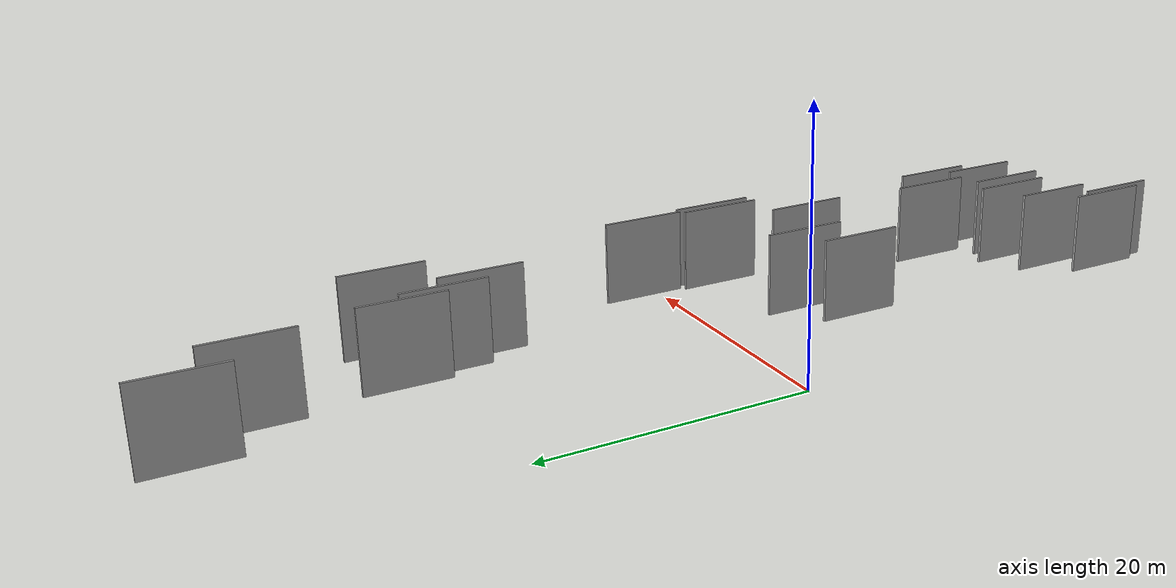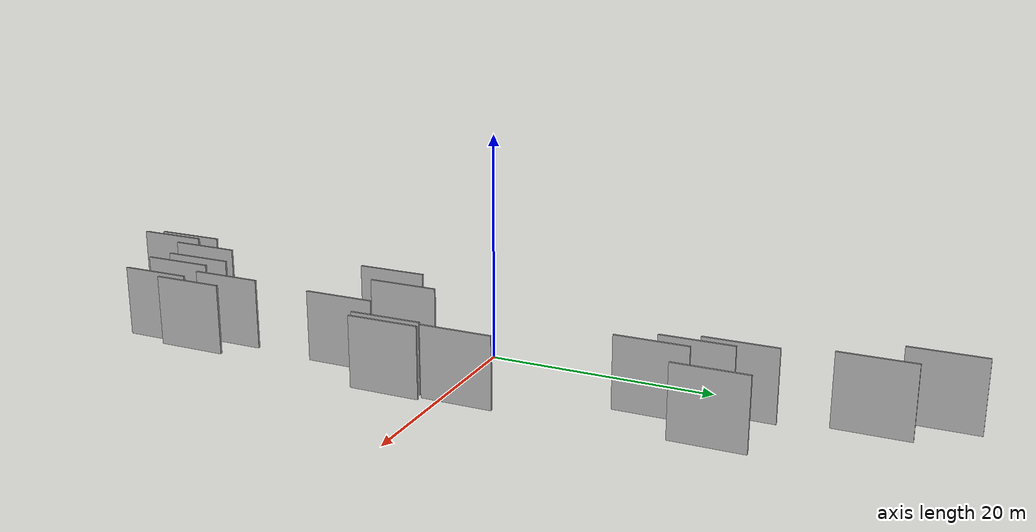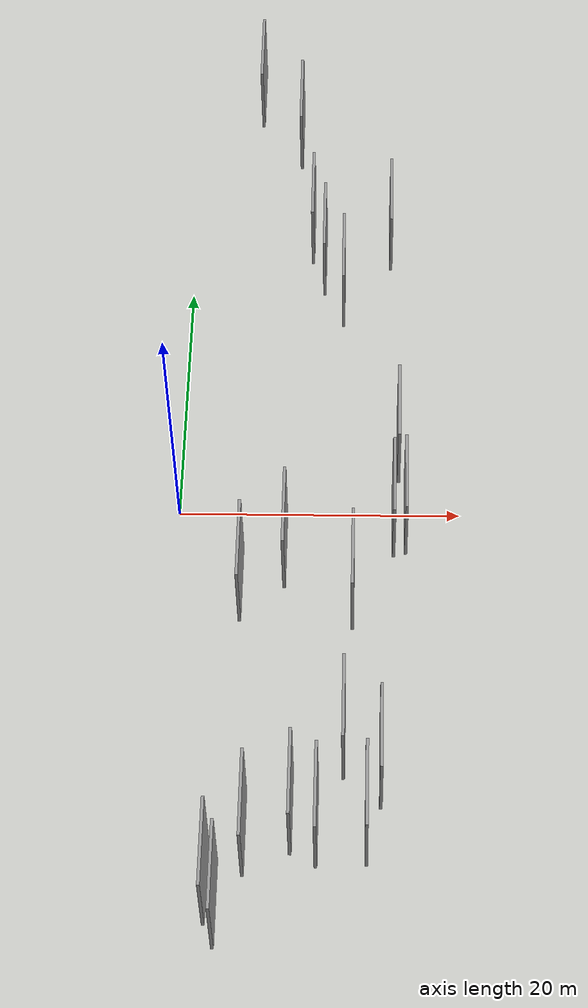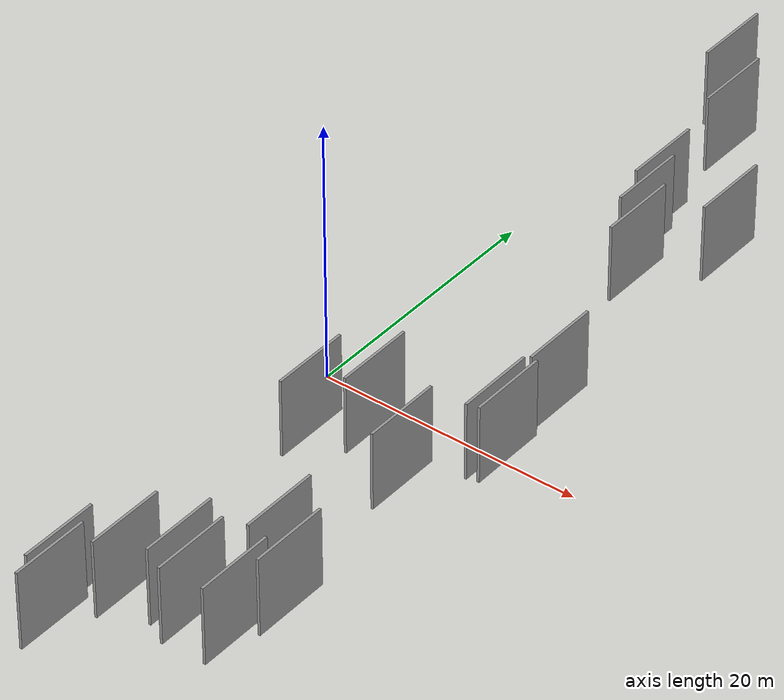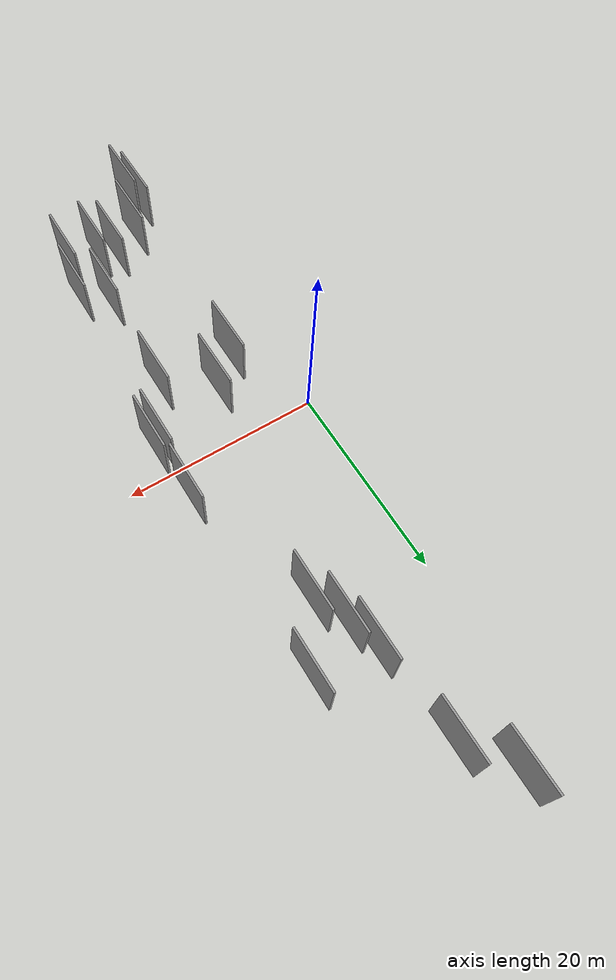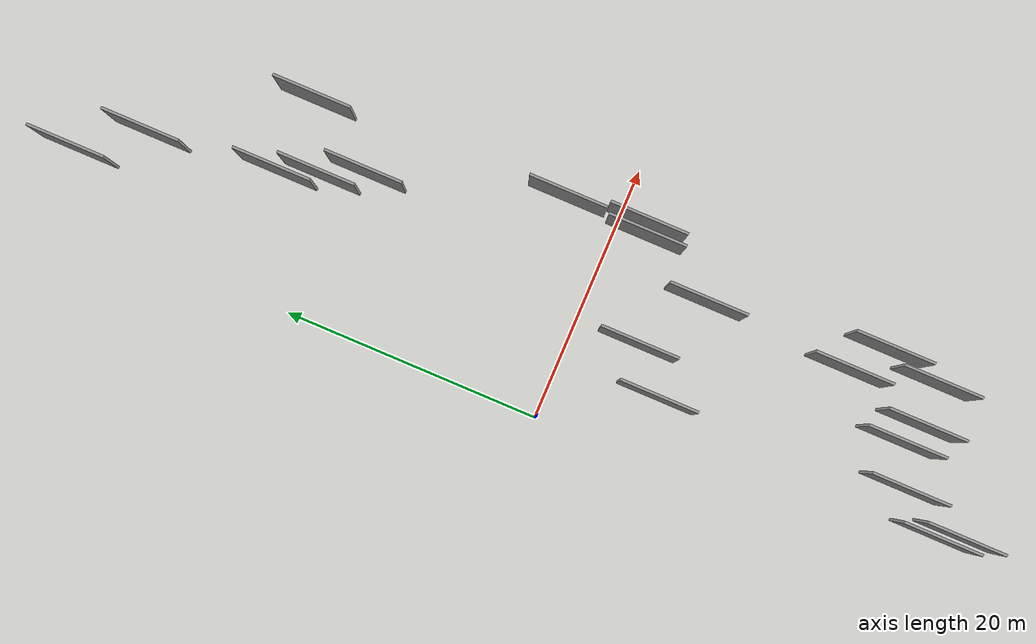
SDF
<sdf version="1.6">
 <world name="default">
  <scene>
   <sky><clouds><speed>12</speed></clouds></sky>
   <ambient>0.4 0.4 0.4 1</ambient>
   <background>0.7 0.7 0.7 1</background>
   <shadows>1</shadows>
  </scene>
  <gravity>0 0 -9.8066</gravity>
  <magnetic_field>6e-06 2.3e-05 -4.2e-05</magnetic_field>
  <physics default="0" name="default_physics" type="ode">
   <ode>
    <solver>
     <type>quick</type>
     <iters>10</iters>
     <sor>1.0</sor>
     <use_dynamic_moi_rescaling>0</use_dynamic_moi_rescaling>
    </solver>
    <constraints>
     <cfm>0</cfm>
     <erp>0.2</erp>
     <contact_max_correcting_vel>100</contact_max_correcting_vel>
     <contact_surface_layer>0.001</contact_surface_layer>
    </constraints>
   </ode>
   <max_step_size>0.004</max_step_size>
   <real_time_factor>1</real_time_factor>
   <real_time_update_rate>250</real_time_update_rate>
  </physics>
  <light name="sun" type="directional">
   <pose>0 0 10 0 0 0</pose>
   <diffuse>0.8 0.8 0.8 1</diffuse>
   <specular>0.2 0.2 0.2 1</specular>
   <attenuation>
    <range>1000</range>
    <constant>0.9</constant>
    <linear>0.01</linear>
    <quadratic>0.001</quadratic>
   </attenuation>
   <direction>-0.5 0.1 -0.9</direction>
  </light>
  <model name="grey_wall_1">
   <static>1</static>
   <pose>10.0781 21.2620 2.5 0.000000 0.000000 1.570796</pose>
   <link name="link">
    <pose>0 0 3.00 0 0 0</pose>
    <collision name="collision"><geometry><box><size>6.00 0.2 6.00</size></box></geometry></collision>
    <visual name="visual">
     <cast_shadows>0</cast_shadows>
     <geometry><box><size>6.00 0.2 6.00</size></box></geometry>
     <material>
      <script>
       <uri>model://grey_wall/materials/scripts</uri>
       <uri>model://grey_wall/materials/textures</uri>
       <name>vrc/grey_wall</name>
      </script>
     </material>
    </visual>
   </link>
  </model>
  <model name="grey_wall_2">
   <static>1</static>
   <pose>8.0754 34.0014 2.5 0.000000 0.000000 1.570796</pose>
   <link name="link">
    <pose>0 0 3.00 0 0 0</pose>
    <collision name="collision"><geometry><box><size>6.00 0.2 6.00</size></box></geometry></collision>
    <visual name="visual">
     <cast_shadows>0</cast_shadows>
     <geometry><box><size>6.00 0.2 6.00</size></box></geometry>
     <material>
      <script>
       <uri>model://grey_wall/materials/scripts</uri>
       <uri>model://grey_wall/materials/textures</uri>
       <name>vrc/grey_wall</name>
      </script>
     </material>
    </visual>
   </link>
  </model>
  <model name="grey_wall_3">
   <static>1</static>
   <pose>15.6154 4.1372 2.5 0.000000 0.000000 1.570796</pose>
   <link name="link">
    <pose>0 0 3.00 0 0 0</pose>
    <collision name="collision"><geometry><box><size>6.00 0.2 6.00</size></box></geometry></collision>
    <visual name="visual">
     <cast_shadows>0</cast_shadows>
     <geometry><box><size>6.00 0.2 6.00</size></box></geometry>
     <material>
      <script>
       <uri>model://grey_wall/materials/scripts</uri>
       <uri>model://grey_wall/materials/textures</uri>
       <name>vrc/grey_wall</name>
      </script>
     </material>
    </visual>
   </link>
  </model>
  <model name="grey_wall_4">
   <static>1</static>
   <pose>10.2944 -25.6780 2.5 0.000000 0.000000 1.570796</pose>
   <link name="link">
    <pose>0 0 3.00 0 0 0</pose>
    <collision name="collision"><geometry><box><size>6.00 0.2 6.00</size></box></geometry></collision>
    <visual name="visual">
     <cast_shadows>0</cast_shadows>
     <geometry><box><size>6.00 0.2 6.00</size></box></geometry>
     <material>
      <script>
       <uri>model://grey_wall/materials/scripts</uri>
       <uri>model://grey_wall/materials/textures</uri>
       <name>vrc/grey_wall</name>
      </script>
     </material>
    </visual>
   </link>
  </model>
  <model name="grey_wall_5">
   <static>1</static>
   <pose>11.5249 18.2368 2.5 0.000000 0.000000 1.570796</pose>
   <link name="link">
    <pose>0 0 3.00 0 0 0</pose>
    <collision name="collision"><geometry><box><size>6.00 0.2 6.00</size></box></geometry></collision>
    <visual name="visual">
     <cast_shadows>0</cast_shadows>
     <geometry><box><size>6.00 0.2 6.00</size></box></geometry>
     <material>
      <script>
       <uri>model://grey_wall/materials/scripts</uri>
       <uri>model://grey_wall/materials/textures</uri>
       <name>vrc/grey_wall</name>
      </script>
     </material>
    </visual>
   </link>
  </model>
  <model name="grey_wall_6">
   <static>1</static>
   <pose>15.2632 -2.1343 2.5 0.000000 0.000000 1.570796</pose>
   <link name="link">
    <pose>0 0 3.00 0 0 0</pose>
    <collision name="collision"><geometry><box><size>6.00 0.2 6.00</size></box></geometry></collision>
    <visual name="visual">
     <cast_shadows>0</cast_shadows>
     <geometry><box><size>6.00 0.2 6.00</size></box></geometry>
     <material>
      <script>
       <uri>model://grey_wall/materials/scripts</uri>
       <uri>model://grey_wall/materials/textures</uri>
       <name>vrc/grey_wall</name>
      </script>
     </material>
    </visual>
   </link>
  </model>
  <model name="grey_wall_7">
   <static>1</static>
   <pose>13.5310 -25.5161 2.5 0.000000 0.000000 1.570796</pose>
   <link name="link">
    <pose>0 0 3.00 0 0 0</pose>
    <collision name="collision"><geometry><box><size>6.00 0.2 6.00</size></box></geometry></collision>
    <visual name="visual">
     <cast_shadows>0</cast_shadows>
     <geometry><box><size>6.00 0.2 6.00</size></box></geometry>
     <material>
      <script>
       <uri>model://grey_wall/materials/scripts</uri>
       <uri>model://grey_wall/materials/textures</uri>
       <name>vrc/grey_wall</name>
      </script>
     </material>
    </visual>
   </link>
  </model>
  <model name="grey_wall_8">
   <static>1</static>
   <pose>3.2987 -29.6583 2.5 0.000000 0.000000 1.570796</pose>
   <link name="link">
    <pose>0 0 3.00 0 0 0</pose>
    <collision name="collision"><geometry><box><size>6.00 0.2 6.00</size></box></geometry></collision>
    <visual name="visual">
     <cast_shadows>0</cast_shadows>
     <geometry><box><size>6.00 0.2 6.00</size></box></geometry>
     <material>
      <script>
       <uri>model://grey_wall/materials/scripts</uri>
       <uri>model://grey_wall/materials/textures</uri>
       <name>vrc/grey_wall</name>
      </script>
     </material>
    </visual>
   </link>
  </model>
  <model name="grey_wall_9">
   <static>1</static>
   <pose>15.0407 23.7367 2.5 0.000000 0.000000 1.570796</pose>
   <link name="link">
    <pose>0 0 3.00 0 0 0</pose>
    <collision name="collision"><geometry><box><size>6.00 0.2 6.00</size></box></geometry></collision>
    <visual name="visual">
     <cast_shadows>0</cast_shadows>
     <geometry><box><size>6.00 0.2 6.00</size></box></geometry>
     <material>
      <script>
       <uri>model://grey_wall/materials/scripts</uri>
       <uri>model://grey_wall/materials/textures</uri>
       <name>vrc/grey_wall</name>
      </script>
     </material>
    </visual>
   </link>
  </model>
  <model name="grey_wall_10">
   <static>1</static>
   <pose>5.6263 -26.3028 2.5 0.000000 0.000000 1.570796</pose>
   <link name="link">
    <pose>0 0 3.00 0 0 0</pose>
    <collision name="collision"><geometry><box><size>6.00 0.2 6.00</size></box></geometry></collision>
    <visual name="visual">
     <cast_shadows>0</cast_shadows>
     <geometry><box><size>6.00 0.2 6.00</size></box></geometry>
     <material>
      <script>
       <uri>model://grey_wall/materials/scripts</uri>
       <uri>model://grey_wall/materials/textures</uri>
       <name>vrc/grey_wall</name>
      </script>
     </material>
    </visual>
   </link>
  </model>
  <model name="grey_wall_11">
   <static>1</static>
   <pose>12.4580 -8.0084 2.5 0.000000 0.000000 1.570796</pose>
   <link name="link">
    <pose>0 0 3.00 0 0 0</pose>
    <collision name="collision"><geometry><box><size>6.00 0.2 6.00</size></box></geometry></collision>
    <visual name="visual">
     <cast_shadows>0</cast_shadows>
     <geometry><box><size>6.00 0.2 6.00</size></box></geometry>
     <material>
      <script>
       <uri>model://grey_wall/materials/scripts</uri>
       <uri>model://grey_wall/materials/textures</uri>
       <name>vrc/grey_wall</name>
      </script>
     </material>
    </visual>
   </link>
  </model>
  <model name="grey_wall_12">
   <static>1</static>
   <pose>16.0974 -1.9012 2.5 0.000000 0.000000 1.570796</pose>
   <link name="link">
    <pose>0 0 3.00 0 0 0</pose>
    <collision name="collision"><geometry><box><size>6.00 0.2 6.00</size></box></geometry></collision>
    <visual name="visual">
     <cast_shadows>0</cast_shadows>
     <geometry><box><size>6.00 0.2 6.00</size></box></geometry>
     <material>
      <script>
       <uri>model://grey_wall/materials/scripts</uri>
       <uri>model://grey_wall/materials/textures</uri>
       <name>vrc/grey_wall</name>
      </script>
     </material>
    </visual>
   </link>
  </model>
  <model name="grey_wall_13">
   <static>1</static>
   <pose>8.6313 -24.7981 2.5 0.000000 0.000000 1.570796</pose>
   <link name="link">
    <pose>0 0 3.00 0 0 0</pose>
    <collision name="collision"><geometry><box><size>6.00 0.2 6.00</size></box></geometry></collision>
    <visual name="visual">
     <cast_shadows>0</cast_shadows>
     <geometry><box><size>6.00 0.2 6.00</size></box></geometry>
     <material>
      <script>
       <uri>model://grey_wall/materials/scripts</uri>
       <uri>model://grey_wall/materials/textures</uri>
       <name>vrc/grey_wall</name>
      </script>
     </material>
    </visual>
   </link>
  </model>
  <model name="grey_wall_14">
   <static>1</static>
   <pose>7.7189 -4.7215 2.5 0.000000 0.000000 1.570796</pose>
   <link name="link">
    <pose>0 0 3.00 0 0 0</pose>
    <collision name="collision"><geometry><box><size>6.00 0.2 6.00</size></box></geometry></collision>
    <visual name="visual">
     <cast_shadows>0</cast_shadows>
     <geometry><box><size>6.00 0.2 6.00</size></box></geometry>
     <material>
      <script>
       <uri>model://grey_wall/materials/scripts</uri>
       <uri>model://grey_wall/materials/textures</uri>
       <name>vrc/grey_wall</name>
      </script>
     </material>
    </visual>
   </link>
  </model>
  <model name="grey_wall_15">
   <static>1</static>
   <pose>4.9318 38.4271 2.5 0.000000 0.000000 1.570796</pose>
   <link name="link">
    <pose>0 0 3.00 0 0 0</pose>
    <collision name="collision"><geometry><box><size>6.00 0.2 6.00</size></box></geometry></collision>
    <visual name="visual">
     <cast_shadows>0</cast_shadows>
     <geometry><box><size>6.00 0.2 6.00</size></box></geometry>
     <material>
      <script>
       <uri>model://grey_wall/materials/scripts</uri>
       <uri>model://grey_wall/materials/textures</uri>
       <name>vrc/grey_wall</name>
      </script>
     </material>
    </visual>
   </link>
  </model>
  <model name="grey_wall_16">
   <static>1</static>
   <pose>9.1551 24.3074 2.5 0.000000 0.000000 1.570796</pose>
   <link name="link">
    <pose>0 0 3.00 0 0 0</pose>
    <collision name="collision"><geometry><box><size>6.00 0.2 6.00</size></box></geometry></collision>
    <visual name="visual">
     <cast_shadows>0</cast_shadows>
     <geometry><box><size>6.00 0.2 6.00</size></box></geometry>
     <material>
      <script>
       <uri>model://grey_wall/materials/scripts</uri>
       <uri>model://grey_wall/materials/textures</uri>
       <name>vrc/grey_wall</name>
      </script>
     </material>
    </visual>
   </link>
  </model>
  <model name="grey_wall_17">
   <static>1</static>
   <pose>14.4473 -21.4778 2.5 0.000000 0.000000 1.570796</pose>
   <link name="link">
    <pose>0 0 3.00 0 0 0</pose>
    <collision name="collision"><geometry><box><size>6.00 0.2 6.00</size></box></geometry></collision>
    <visual name="visual">
     <cast_shadows>0</cast_shadows>
     <geometry><box><size>6.00 0.2 6.00</size></box></geometry>
     <material>
      <script>
       <uri>model://grey_wall/materials/scripts</uri>
       <uri>model://grey_wall/materials/textures</uri>
       <name>vrc/grey_wall</name>
      </script>
     </material>
    </visual>
   </link>
  </model>
  <model name="grey_wall_18">
   <static>1</static>
   <pose>11.9776 -19.3752 2.5 0.000000 0.000000 1.570796</pose>
   <link name="link">
    <pose>0 0 3.00 0 0 0</pose>
    <collision name="collision"><geometry><box><size>6.00 0.2 6.00</size></box></geometry></collision>
    <visual name="visual">
     <cast_shadows>0</cast_shadows>
     <geometry><box><size>6.00 0.2 6.00</size></box></geometry>
     <material>
      <script>
       <uri>model://grey_wall/materials/scripts</uri>
       <uri>model://grey_wall/materials/textures</uri>
       <name>vrc/grey_wall</name>
      </script>
     </material>
    </visual>
   </link>
  </model>
  <model name="grey_wall_19">
   <static>1</static>
   <pose>4.7375 -7.4354 2.5 0.000000 0.000000 1.570796</pose>
   <link name="link">
    <pose>0 0 3.00 0 0 0</pose>
    <collision name="collision"><geometry><box><size>6.00 0.2 6.00</size></box></geometry></collision>
    <visual name="visual">
     <cast_shadows>0</cast_shadows>
     <geometry><box><size>6.00 0.2 6.00</size></box></geometry>
     <material>
      <script>
       <uri>model://grey_wall/materials/scripts</uri>
       <uri>model://grey_wall/materials/textures</uri>
       <name>vrc/grey_wall</name>
      </script>
     </material>
    </visual>
   </link>
  </model>
  <model name="grey_wall_20">
   <static>1</static>
   <pose>3.9477 -31.2192 2.5 0.000000 0.000000 1.570796</pose>
   <link name="link">
    <pose>0 0 3.00 0 0 0</pose>
    <collision name="collision"><geometry><box><size>6.00 0.2 6.00</size></box></geometry></collision>
    <visual name="visual">
     <cast_shadows>0</cast_shadows>
     <geometry><box><size>6.00 0.2 6.00</size></box></geometry>
     <material>
      <script>
       <uri>model://grey_wall/materials/scripts</uri>
       <uri>model://grey_wall/materials/textures</uri>
       <name>vrc/grey_wall</name>
      </script>
     </material>
    </visual>
   </link>
  </model>
 </world>
</sdf>
